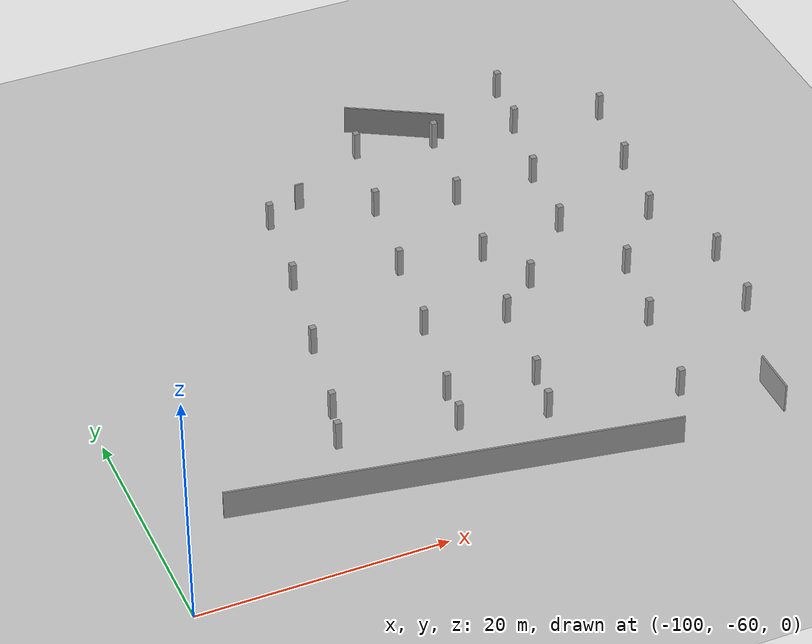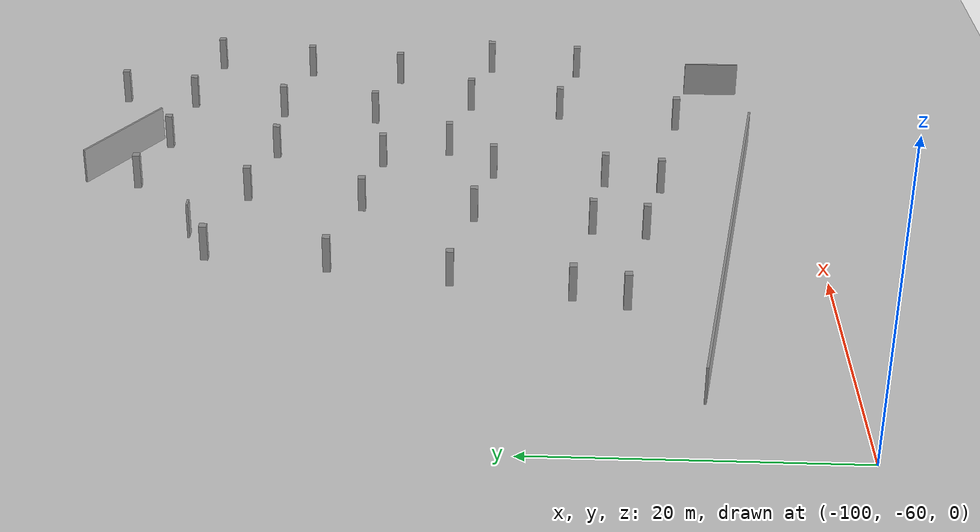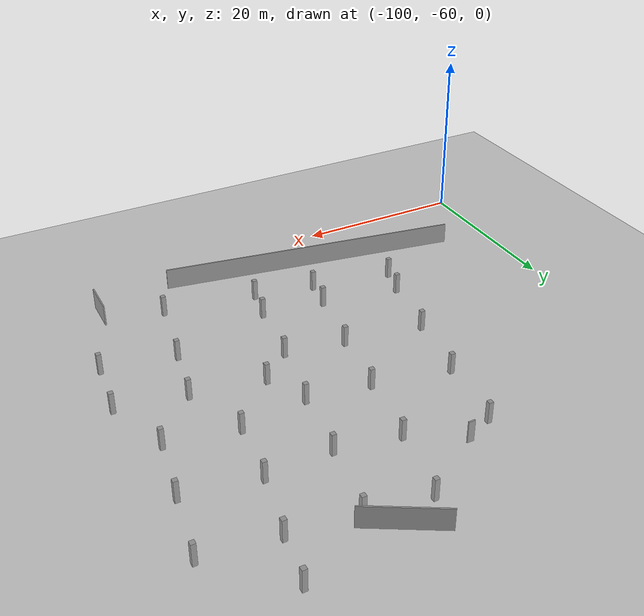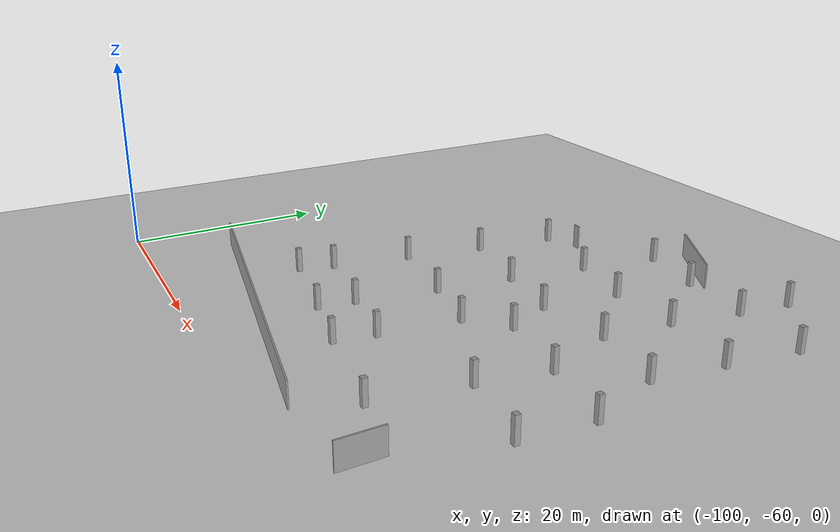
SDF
<sdf version="1.6">
 <world name="default">
  <model name="ground_plane">
   <static>1</static>
   <link name="link">
    <collision name="collision">
     <geometry><plane><normal>0 0 1</normal><size>100 100</size></plane></geometry>
     <surface>
      <contact><collide_bitmask>65535</collide_bitmask></contact>
      <friction><ode><mu>100</mu><mu2>50</mu2></ode></friction>
     </surface>
    </collision>
    <visual name="visual">
     <cast_shadows>0</cast_shadows>
     <geometry><plane><normal>0 0 1</normal><size>100 100</size></plane></geometry>
     <material>
      <script><uri>file://media/materials/scripts/gazebo.material</uri><name>Gazebo/Grey</name></script>
     </material>
    </visual>
   </link>
  </model>
  <model name="parking_area_big_2">
   <pose>0.028574 -0.058085 0 0 -0 0</pose>
   <link name="Wall_215">
    <collision name="Wall_215_Collision">
     <geometry><box><size>8.5 0.15 2.5</size></box></geometry>
     <pose>0 0 1.25 0 -0 0</pose>
    </collision>
    <visual name="Wall_215_Visual">
     <pose>0 0 1.25 0 -0 0</pose>
     <geometry><box><size>8.5 0.15 2.5</size></box></geometry>
     <material>
      <script><uri>file://media/materials/scripts/gazebo.material</uri><name>Gazebo/Grey</name></script>
      <ambient>1 1 1 1</ambient>
     </material>
     <meta><layer>0</layer></meta>
    </visual>
    <pose>-64.0457 -11.5233 0 0 -0 2.61799</pose>
   </link>
   <link name="Wall_220">
    <collision name="Wall_220_Collision">
     <geometry><box><size>0.51 0.5 2.5</size></box></geometry>
     <pose>0 0 1.25 0 -0 0</pose>
    </collision>
    <visual name="Wall_220_Visual">
     <pose>0 0 1.25 0 -0 0</pose>
     <geometry><box><size>0.51 0.5 2.5</size></box></geometry>
     <material>
      <script><uri>file://media/materials/scripts/gazebo.material</uri><name>Gazebo/Grey</name></script>
      <ambient>1 1 1 1</ambient>
     </material>
     <meta><layer>0</layer></meta>
    </visual>
    <pose>-68.2082 -13.2033 0 0 -0 0</pose>
   </link>
   <link name="Wall_222">
    <collision name="Wall_222_Collision">
     <geometry><box><size>0.51 0.5 2.5</size></box></geometry>
     <pose>0 0 1.25 0 -0 0</pose>
    </collision>
    <visual name="Wall_222_Visual">
     <pose>0 0 1.25 0 -0 0</pose>
     <geometry><box><size>0.51 0.5 2.5</size></box></geometry>
     <material>
      <script><uri>file://media/materials/scripts/gazebo.material</uri><name>Gazebo/Grey</name></script>
      <ambient>1 1 1 1</ambient>
     </material>
     <meta><layer>0</layer></meta>
    </visual>
    <pose>-61.6308 -14.3904 0 0 -0 0</pose>
   </link>
   <link name="Wall_233">
    <collision name="Wall_233_Collision">
     <geometry><box><size>0.51 0.5 2.5</size></box></geometry>
     <pose>0 0 1.25 0 -0 0</pose>
    </collision>
    <visual name="Wall_233_Visual">
     <pose>0 0 1.25 0 -0 0</pose>
     <geometry><box><size>0.51 0.5 2.5</size></box></geometry>
     <material>
      <script><uri>file://media/materials/scripts/gazebo.material</uri><name>Gazebo/Grey</name></script>
      <ambient>1 1 1 1</ambient>
     </material>
     <meta><layer>0</layer></meta>
    </visual>
    <pose>-53.6773 -9.77341 0 0 -0 0</pose>
   </link>
   <link name="Wall_235">
    <collision name="Wall_235_Collision">
     <geometry><box><size>0.51 0.5 2.5</size></box></geometry>
     <pose>0 0 1.25 0 -0 0</pose>
    </collision>
    <visual name="Wall_235_Visual">
     <pose>0 0 1.25 0 -0 0</pose>
     <geometry><box><size>0.51 0.5 2.5</size></box></geometry>
     <material>
      <script><uri>file://media/materials/scripts/gazebo.material</uri><name>Gazebo/Grey</name></script>
      <ambient>1 1 1 1</ambient>
     </material>
     <meta><layer>0</layer></meta>
    </visual>
    <pose>-54.5064 -15.1369 0 0 -0 -1.5708</pose>
   </link>
   <link name="Wall_239">
    <collision name="Wall_239_Collision">
     <geometry><box><size>0.75 0.15 2.5</size></box></geometry>
     <pose>0 0 1.25 0 -0 0</pose>
    </collision>
    <visual name="Wall_239_Visual">
     <pose>0 0 1.25 0 -0 0</pose>
     <geometry><box><size>0.75 0.15 2.5</size></box></geometry>
     <material>
      <script><uri>file://media/materials/scripts/gazebo.material</uri><name>Gazebo/Grey</name></script>
      <ambient>1 1 1 1</ambient>
     </material>
     <meta><layer>0</layer></meta>
    </visual>
    <pose>-75.2732 -17.9479 0 0 -0 3.14159</pose>
   </link>
   <link name="Wall_242">
    <collision name="Wall_242_Collision">
     <geometry><box><size>0.51 0.5 2.5</size></box></geometry>
     <pose>0 0 1.25 0 -0 0</pose>
    </collision>
    <visual name="Wall_242_Visual">
     <pose>0 0 1.25 0 -0 0</pose>
     <geometry><box><size>0.51 0.5 2.5</size></box></geometry>
     <material>
      <script><uri>file://media/materials/scripts/gazebo.material</uri><name>Gazebo/Grey</name></script>
      <ambient>1 1 1 1</ambient>
     </material>
     <meta><layer>0</layer></meta>
    </visual>
    <pose>-46.9709 -16.2323 0 0 -0 -1.5708</pose>
   </link>
   <link name="Wall_339">
    <collision name="Wall_339_Collision">
     <geometry><box><size>0.51 0.5 2.5</size></box></geometry>
     <pose>0 0 1.25 0 -0 0</pose>
    </collision>
    <visual name="Wall_339_Visual">
     <pose>0 0 1.25 0 -0 0</pose>
     <geometry><box><size>0.51 0.5 2.5</size></box></geometry>
     <material>
      <script><uri>file://media/materials/scripts/gazebo.material</uri><name>Gazebo/Grey</name></script>
      <ambient>1 1 1 1</ambient>
     </material>
     <meta><layer>0</layer></meta>
    </visual>
    <pose>-63.0325 -22.4443 0 0 -0 0</pose>
   </link>
   <link name="Wall_341">
    <collision name="Wall_341_Collision">
     <geometry><box><size>0.51 0.5 2.5</size></box></geometry>
     <pose>0 0 1.25 0 -0 0</pose>
    </collision>
    <visual name="Wall_341_Visual">
     <pose>0 0 1.25 0 -0 0</pose>
     <geometry><box><size>0.51 0.5 2.5</size></box></geometry>
     <material>
      <script><uri>file://media/materials/scripts/gazebo.material</uri><name>Gazebo/Grey</name></script>
      <ambient>1 1 1 1</ambient>
     </material>
     <meta><layer>0</layer></meta>
    </visual>
    <pose>-55.9487 -22.1484 0 0 -0 0</pose>
   </link>
   <link name="Wall_343">
    <collision name="Wall_343_Collision">
     <geometry><box><size>0.51 0.5 2.5</size></box></geometry>
     <pose>0 0 1.25 0 -0 0</pose>
    </collision>
    <visual name="Wall_343_Visual">
     <pose>0 0 1.25 0 -0 0</pose>
     <geometry><box><size>0.51 0.5 2.5</size></box></geometry>
     <material>
      <script><uri>file://media/materials/scripts/gazebo.material</uri><name>Gazebo/Grey</name></script>
      <ambient>1 1 1 1</ambient>
     </material>
     <meta><layer>0</layer></meta>
    </visual>
    <pose>-48.1568 -23.5388 0 0 -0 0</pose>
   </link>
   <link name="Wall_363">
    <collision name="Wall_363_Collision">
     <geometry><box><size>0.51 0.5 2.5</size></box></geometry>
     <pose>0 0 1.25 0 -0 0</pose>
    </collision>
    <visual name="Wall_363_Visual">
     <pose>0 0 1.25 0 -0 0</pose>
     <geometry><box><size>0.51 0.5 2.5</size></box></geometry>
     <material>
      <script><uri>file://media/materials/scripts/gazebo.material</uri><name>Gazebo/Grey</name></script>
      <ambient>1 1 1 1</ambient>
     </material>
     <meta><layer>0</layer></meta>
    </visual>
    <pose>-49.3018 -30.5666 0 0 -0 0</pose>
   </link>
   <link name="Wall_365">
    <collision name="Wall_365_Collision">
     <geometry><box><size>0.51 0.5 2.5</size></box></geometry>
     <pose>0 0 1.25 0 -0 0</pose>
    </collision>
    <visual name="Wall_365_Visual">
     <pose>0 0 1.25 0 -0 0</pose>
     <geometry><box><size>0.51 0.5 2.5</size></box></geometry>
     <material>
      <script><uri>file://media/materials/scripts/gazebo.material</uri><name>Gazebo/Grey</name></script>
      <ambient>1 1 1 1</ambient>
     </material>
     <meta><layer>0</layer></meta>
    </visual>
    <pose>-56.7712 -29.1408 0 0 -0 0</pose>
   </link>
   <link name="Wall_367">
    <collision name="Wall_367_Collision">
     <geometry><box><size>0.51 0.5 2.5</size></box></geometry>
     <pose>0 0 1.25 0 -0 0</pose>
    </collision>
    <visual name="Wall_367_Visual">
     <pose>0 0 1.25 0 -0 0</pose>
     <geometry><box><size>0.51 0.5 2.5</size></box></geometry>
     <material>
      <script><uri>file://media/materials/scripts/gazebo.material</uri><name>Gazebo/Grey</name></script>
      <ambient>1 1 1 1</ambient>
     </material>
     <meta><layer>0</layer></meta>
    </visual>
    <pose>-64.1293 -30.2316 0 0 -0 0</pose>
   </link>
   <link name="Wall_369">
    <collision name="Wall_369_Collision">
     <geometry><box><size>0.51 0.5 2.5</size></box></geometry>
     <pose>0 0 1.25 0 -0 0</pose>
    </collision>
    <visual name="Wall_369_Visual">
     <pose>0 0 1.25 0 -0 0</pose>
     <geometry><box><size>0.51 0.5 2.5</size></box></geometry>
     <material>
      <script><uri>file://media/materials/scripts/gazebo.material</uri><name>Gazebo/Grey</name></script>
      <ambient>1 1 1 1</ambient>
     </material>
     <meta><layer>0</layer></meta>
    </visual>
    <pose>-69.7977 -21.2063 0 0 -0 0</pose>
   </link>
   <link name="Wall_371">
    <collision name="Wall_371_Collision">
     <geometry><box><size>0.51 0.5 2.5</size></box></geometry>
     <pose>0 0 1.25 0 -0 0</pose>
    </collision>
    <visual name="Wall_371_Visual">
     <pose>0 0 1.25 0 -0 0</pose>
     <geometry><box><size>0.51 0.5 2.5</size></box></geometry>
     <material>
      <script><uri>file://media/materials/scripts/gazebo.material</uri><name>Gazebo/Grey</name></script>
      <ambient>1 1 1 1</ambient>
     </material>
     <meta><layer>0</layer></meta>
    </visual>
    <pose>-78.4478 -19.4629 0 0 -0 0</pose>
   </link>
   <link name="Wall_373">
    <collision name="Wall_373_Collision">
     <geometry><box><size>0.51 0.5 2.5</size></box></geometry>
     <pose>0 0 1.25 0 -0 0</pose>
    </collision>
    <visual name="Wall_373_Visual">
     <pose>0 0 1.25 0 -0 0</pose>
     <geometry><box><size>0.51 0.5 2.5</size></box></geometry>
     <material>
      <script><uri>file://media/materials/scripts/gazebo.material</uri><name>Gazebo/Grey</name></script>
      <ambient>1 1 1 1</ambient>
     </material>
     <meta><layer>0</layer></meta>
    </visual>
    <pose>-62.0568 -34.9232 0 0 -0 0</pose>
   </link>
   <link name="Wall_375">
    <collision name="Wall_375_Collision">
     <geometry><box><size>0.51 0.5 2.5</size></box></geometry>
     <pose>0 0 1.25 0 -0 0</pose>
    </collision>
    <visual name="Wall_375_Visual">
     <pose>0 0 1.25 0 -0 0</pose>
     <geometry><box><size>0.51 0.5 2.5</size></box></geometry>
     <material>
      <script><uri>file://media/materials/scripts/gazebo.material</uri><name>Gazebo/Grey</name></script>
      <ambient>1 1 1 1</ambient>
     </material>
     <meta><layer>0</layer></meta>
    </visual>
    <pose>-65.6049 -38.2021 0 0 -0 0</pose>
   </link>
   <link name="Wall_377">
    <collision name="Wall_377_Collision">
     <geometry><box><size>0.51 0.5 2.5</size></box></geometry>
     <pose>0 0 1.25 0 -0 0</pose>
    </collision>
    <visual name="Wall_377_Visual">
     <pose>0 0 1.25 0 -0 0</pose>
     <geometry><box><size>0.51 0.5 2.5</size></box></geometry>
     <material>
      <script><uri>file://media/materials/scripts/gazebo.material</uri><name>Gazebo/Grey</name></script>
      <ambient>1 1 1 1</ambient>
     </material>
     <meta><layer>0</layer></meta>
    </visual>
    <pose>-71.0548 -29.2484 0 0 -0 0</pose>
   </link>
   <link name="Wall_379">
    <collision name="Wall_379_Collision">
     <geometry><box><size>0.51 0.5 2.5</size></box></geometry>
     <pose>0 0 1.25 0 -0 0</pose>
    </collision>
    <visual name="Wall_379_Visual">
     <pose>0 0 1.25 0 -0 0</pose>
     <geometry><box><size>0.51 0.5 2.5</size></box></geometry>
     <material>
      <script><uri>file://media/materials/scripts/gazebo.material</uri><name>Gazebo/Grey</name></script>
      <ambient>1 1 1 1</ambient>
     </material>
     <meta><layer>0</layer></meta>
    </visual>
    <pose>-72.2453 -36.9981 0 0 -0 -1.5708</pose>
   </link>
   <link name="Wall_381">
    <collision name="Wall_381_Collision">
     <geometry><box><size>0.51 0.5 2.5</size></box></geometry>
     <pose>0 0 1.25 0 -0 0</pose>
    </collision>
    <visual name="Wall_381_Visual">
     <pose>0 0 1.25 0 -0 0</pose>
     <geometry><box><size>0.51 0.5 2.5</size></box></geometry>
     <material>
      <script><uri>file://media/materials/scripts/gazebo.material</uri><name>Gazebo/Grey</name></script>
      <ambient>1 1 1 1</ambient>
     </material>
     <meta><layer>0</layer></meta>
    </visual>
    <pose>-79.645 -27.6359 0 0 -0 0</pose>
   </link>
   <link name="Wall_383">
    <collision name="Wall_383_Collision">
     <geometry><box><size>0.51 0.5 2.5</size></box></geometry>
     <pose>0 0 1.25 0 -0 0</pose>
    </collision>
    <visual name="Wall_383_Visual">
     <pose>0 0 1.25 0 -0 0</pose>
     <geometry><box><size>0.51 0.5 2.5</size></box></geometry>
     <material>
      <script><uri>file://media/materials/scripts/gazebo.material</uri><name>Gazebo/Grey</name></script>
      <ambient>1 1 1 1</ambient>
     </material>
     <meta><layer>0</layer></meta>
    </visual>
    <pose>-81.1361 -35.6789 0 0 -0 0</pose>
   </link>
   <link name="Wall_385">
    <collision name="Wall_385_Collision">
     <geometry><box><size>0.51 0.5 2.5</size></box></geometry>
     <pose>0 0 1.25 0 -0 0</pose>
    </collision>
    <visual name="Wall_385_Visual">
     <pose>0 0 1.25 0 -0 0</pose>
     <geometry><box><size>0.51 0.5 2.5</size></box></geometry>
     <material>
      <script><uri>file://media/materials/scripts/gazebo.material</uri><name>Gazebo/Grey</name></script>
      <ambient>1 1 1 1</ambient>
     </material>
     <meta><layer>0</layer></meta>
    </visual>
    <pose>-82.6827 -43.5052 0 0 -0 0</pose>
   </link>
   <link name="Wall_387">
    <collision name="Wall_387_Collision">
     <geometry><box><size>0.51 0.5 2.5</size></box></geometry>
     <pose>0 0 1.25 0 -0 0</pose>
    </collision>
    <visual name="Wall_387_Visual">
     <pose>0 0 1.25 0 -0 0</pose>
     <geometry><box><size>0.51 0.5 2.5</size></box></geometry>
     <material>
      <script><uri>file://media/materials/scripts/gazebo.material</uri><name>Gazebo/Grey</name></script>
      <ambient>1 1 1 1</ambient>
     </material>
     <meta><layer>0</layer></meta>
    </visual>
    <pose>-83.6104 -46.9275 0 0 -0 0</pose>
   </link>
   <link name="Wall_389">
    <collision name="Wall_389_Collision">
     <geometry><box><size>0.51 0.5 2.5</size></box></geometry>
     <pose>0 0 1.25 0 -0 0</pose>
    </collision>
    <visual name="Wall_389_Visual">
     <pose>0 0 1.25 0 -0 0</pose>
     <geometry><box><size>0.51 0.5 2.5</size></box></geometry>
     <material>
      <script><uri>file://media/materials/scripts/gazebo.material</uri><name>Gazebo/Grey</name></script>
      <ambient>1 1 1 1</ambient>
     </material>
     <meta><layer>0</layer></meta>
    </visual>
    <pose>-73.7398 -45.0096 0 0 -0 0</pose>
   </link>
   <link name="Wall_391">
    <collision name="Wall_391_Collision">
     <geometry><box><size>0.51 0.5 2.5</size></box></geometry>
     <pose>0 0 1.25 0 -0 0</pose>
    </collision>
    <visual name="Wall_391_Visual">
     <pose>0 0 1.25 0 -0 0</pose>
     <geometry><box><size>0.51 0.5 2.5</size></box></geometry>
     <material>
      <script><uri>file://media/materials/scripts/gazebo.material</uri><name>Gazebo/Grey</name></script>
      <ambient>1 1 1 1</ambient>
     </material>
     <meta><layer>0</layer></meta>
    </visual>
    <pose>-74.2907 -48.5839 0 0 -0 0</pose>
   </link>
   <link name="Wall_393">
    <collision name="Wall_393_Collision">
     <geometry><box><size>0.51 0.5 2.5</size></box></geometry>
     <pose>0 0 1.25 0 -0 0</pose>
    </collision>
    <visual name="Wall_393_Visual">
     <pose>0 0 1.25 0 -0 0</pose>
     <geometry><box><size>0.51 0.5 2.5</size></box></geometry>
     <material>
      <script><uri>file://media/materials/scripts/gazebo.material</uri><name>Gazebo/Grey</name></script>
      <ambient>1 1 1 1</ambient>
     </material>
     <meta><layer>0</layer></meta>
    </visual>
    <pose>-66.6586 -46.0605 0 0 -0 0</pose>
   </link>
   <link name="Wall_395">
    <collision name="Wall_395_Collision">
     <geometry><box><size>0.51 0.5 2.5</size></box></geometry>
     <pose>0 0 1.25 0 -0 0</pose>
    </collision>
    <visual name="Wall_395_Visual">
     <pose>0 0 1.25 0 -0 0</pose>
     <geometry><box><size>0.51 0.5 2.5</size></box></geometry>
     <material>
      <script><uri>file://media/materials/scripts/gazebo.material</uri><name>Gazebo/Grey</name></script>
      <ambient>1 1 1 1</ambient>
     </material>
     <meta><layer>0</layer></meta>
    </visual>
    <pose>-67.4267 -49.9374 0 0 -0 0</pose>
   </link>
   <link name="Wall_397">
    <collision name="Wall_397_Collision">
     <geometry><box><size>0.51 0.5 2.5</size></box></geometry>
     <pose>0 0 1.25 0 -0 0</pose>
    </collision>
    <visual name="Wall_397_Visual">
     <pose>0 0 1.25 0 -0 0</pose>
     <geometry><box><size>0.51 0.5 2.5</size></box></geometry>
     <material>
      <script><uri>file://media/materials/scripts/gazebo.material</uri><name>Gazebo/Grey</name></script>
      <ambient>1 1 1 1</ambient>
     </material>
     <meta><layer>0</layer></meta>
    </visual>
    <pose>-54.1361 -36.287 0 0 -0 0</pose>
   </link>
   <link name="Wall_399">
    <collision name="Wall_399_Collision">
     <geometry><box><size>0.51 0.5 2.5</size></box></geometry>
     <pose>0 0 1.25 0 -0 0</pose>
    </collision>
    <visual name="Wall_399_Visual">
     <pose>0 0 1.25 0 -0 0</pose>
     <geometry><box><size>0.51 0.5 2.5</size></box></geometry>
     <material>
      <script><uri>file://media/materials/scripts/gazebo.material</uri><name>Gazebo/Grey</name></script>
      <ambient>1 1 1 1</ambient>
     </material>
     <meta><layer>0</layer></meta>
    </visual>
    <pose>-55.4228 -43.0155 0 0 -0 0</pose>
   </link>
   <link name="Wall_401">
    <collision name="Wall_401_Collision">
     <geometry><box><size>0.51 0.5 2.5</size></box></geometry>
     <pose>0 0 1.25 0 -0 0</pose>
    </collision>
    <visual name="Wall_401_Visual">
     <pose>0 0 1.25 0 -0 0</pose>
     <geometry><box><size>0.51 0.5 2.5</size></box></geometry>
     <material>
      <script><uri>file://media/materials/scripts/gazebo.material</uri><name>Gazebo/Grey</name></script>
      <ambient>1 1 1 1</ambient>
     </material>
     <meta><layer>0</layer></meta>
    </visual>
    <pose>-56.9766 -51.651 0 0 -0 0</pose>
   </link>
   <link name="Wall_403">
    <collision name="Wall_403_Collision">
     <geometry><box><size>0.51 0.5 2.5</size></box></geometry>
     <pose>0 0 1.25 0 -0 0</pose>
    </collision>
    <visual name="Wall_403_Visual">
     <pose>0 0 1.25 0 -0 0</pose>
     <geometry><box><size>0.51 0.5 2.5</size></box></geometry>
     <material>
      <script><uri>file://media/materials/scripts/gazebo.material</uri><name>Gazebo/Grey</name></script>
      <ambient>1 1 1 1</ambient>
     </material>
     <meta><layer>0</layer></meta>
    </visual>
    <pose>-46.7544 -37.7275 0 0 -0 0</pose>
   </link>
   <link name="Wall_405">
    <collision name="Wall_405_Collision">
     <geometry><box><size>0.51 0.5 2.5</size></box></geometry>
     <pose>0 0 1.25 0 -0 0</pose>
    </collision>
    <visual name="Wall_405_Visual">
     <pose>0 0 1.25 0 -0 0</pose>
     <geometry><box><size>0.51 0.5 2.5</size></box></geometry>
     <material>
      <script><uri>file://media/materials/scripts/gazebo.material</uri><name>Gazebo/Grey</name></script>
      <ambient>1 1 1 1</ambient>
     </material>
     <meta><layer>0</layer></meta>
    </visual>
    <pose>-47.4805 -44.4443 0 0 -0 0</pose>
   </link>
   <link name="Wall_518">
    <collision name="Wall_518_Collision">
     <geometry><box><size>4 0.15 2.5</size></box></geometry>
     <pose>0 0 1.25 0 -0 0</pose>
    </collision>
    <visual name="Wall_518_Visual">
     <pose>0 0 1.25 0 -0 0</pose>
     <geometry><box><size>4 0.15 2.5</size></box></geometry>
     <material>
      <script><uri>file://media/materials/scripts/gazebo.material</uri><name>Gazebo/Grey</name></script>
      <ambient>1 1 1 1</ambient>
     </material>
     <meta><layer>0</layer></meta>
    </visual>
    <pose>-50.5299 -54.7402 0 0 -0 -1.5708</pose>
   </link>
   <link name="Wall_8">
    <collision name="Wall_8_Collision">
     <geometry><box><size>35.6383 0.15 2.5</size></box></geometry>
     <pose>0 0 1.25 0 -0 0</pose>
    </collision>
    <visual name="Wall_8_Visual">
     <pose>0 0 1.25 0 -0 0</pose>
     <geometry><box><size>35.6383 0.15 2.5</size></box></geometry>
     <material>
      <script><uri>file://media/materials/scripts/gazebo.material</uri><name>Gazebo/Grey</name></script>
      <ambient>1 1 1 1</ambient>
     </material>
     <meta><layer>0</layer></meta>
    </visual>
    <pose>-76.7933 -53.8662 0 0 -0 2.97635</pose>
   </link>
   <static>1</static>
  </model>
 </world>
</sdf>
